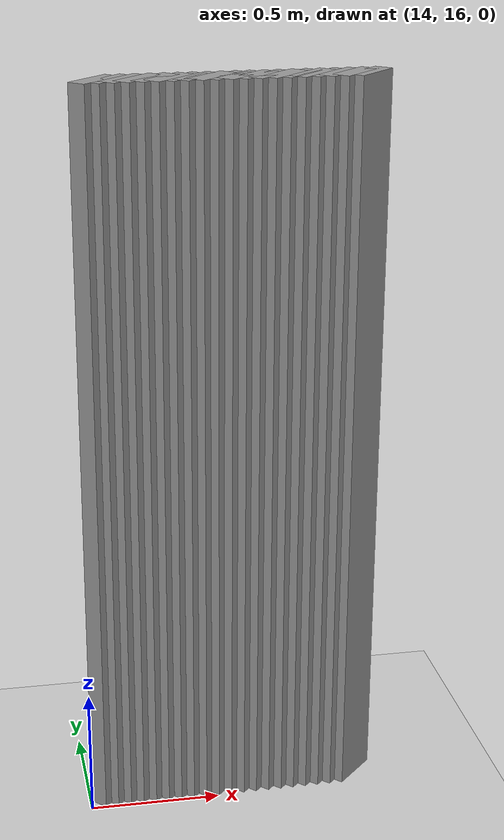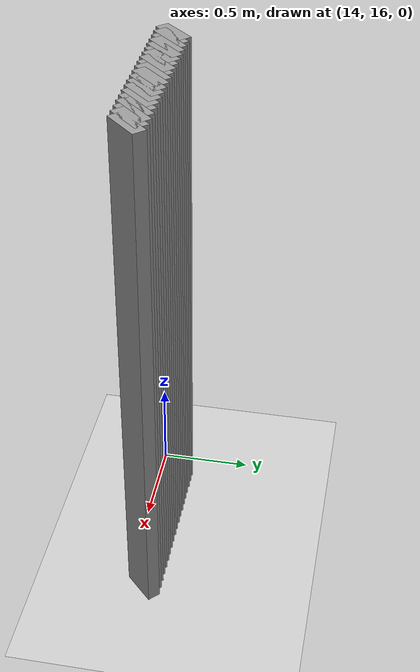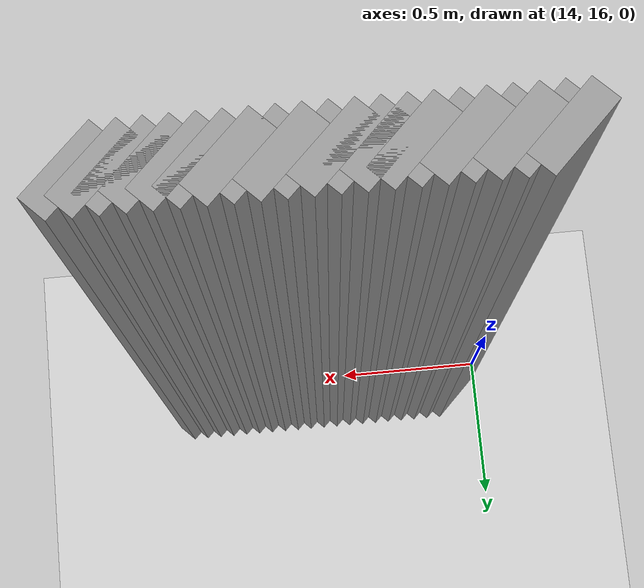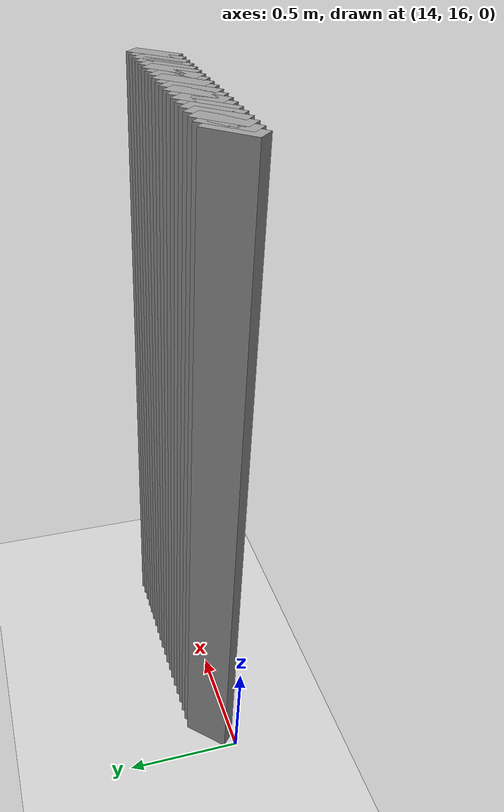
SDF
<sdf version="1.5">
 <world name="default">
  <include><uri>model://ground_plane</uri></include>
  <include><uri>model://sun</uri></include>
  <model name="grey_wall_1123">
   <static>1</static>
   <link name="link">
    <pose>14.1 16.1  1.4 0 0 -0.785398163397</pose>
    <collision name="collision"><geometry><box><size>0.0707106781187 .2  2.8</size></box></geometry></collision>
    <visual name="visual">
     <cast_shadows>0</cast_shadows>
     <geometry><box><size>0.0707106781187 .2  2.8</size></box></geometry>
     <material>
      <script>
       <uri>model://grey_wall/materials/scripts</uri>
       <uri>model://grey_wall/materials/textures</uri>
       <name>vrc/grey_wall</name>
      </script>
     </material>
    </visual>
   </link>
  </model>
  <model name="grey_wall_1124">
   <static>1</static>
   <link name="link">
    <pose>14.15 16.1  1.4 0 0 -0.785398163397</pose>
    <collision name="collision"><geometry><box><size>0.0707106781187 .2  2.8</size></box></geometry></collision>
    <visual name="visual">
     <cast_shadows>0</cast_shadows>
     <geometry><box><size>0.0707106781187 .2  2.8</size></box></geometry>
     <material>
      <script>
       <uri>model://grey_wall/materials/scripts</uri>
       <uri>model://grey_wall/materials/textures</uri>
       <name>vrc/grey_wall</name>
      </script>
     </material>
    </visual>
   </link>
  </model>
  <model name="grey_wall_1125">
   <static>1</static>
   <link name="link">
    <pose>14.2 16.1  1.4 0 0 -0.785398163397</pose>
    <collision name="collision"><geometry><box><size>0.0707106781187 .2  2.8</size></box></geometry></collision>
    <visual name="visual">
     <cast_shadows>0</cast_shadows>
     <geometry><box><size>0.0707106781187 .2  2.8</size></box></geometry>
     <material>
      <script>
       <uri>model://grey_wall/materials/scripts</uri>
       <uri>model://grey_wall/materials/textures</uri>
       <name>vrc/grey_wall</name>
      </script>
     </material>
    </visual>
   </link>
  </model>
  <model name="grey_wall_1126">
   <static>1</static>
   <link name="link">
    <pose>14.25 16.1  1.4 0 0 -0.785398163397</pose>
    <collision name="collision"><geometry><box><size>0.0707106781187 .2  2.8</size></box></geometry></collision>
    <visual name="visual">
     <cast_shadows>0</cast_shadows>
     <geometry><box><size>0.0707106781187 .2  2.8</size></box></geometry>
     <material>
      <script>
       <uri>model://grey_wall/materials/scripts</uri>
       <uri>model://grey_wall/materials/textures</uri>
       <name>vrc/grey_wall</name>
      </script>
     </material>
    </visual>
   </link>
  </model>
  <model name="grey_wall_1127">
   <static>1</static>
   <link name="link">
    <pose>14.3 16.1  1.4 0 0 -0.785398163397</pose>
    <collision name="collision"><geometry><box><size>0.0707106781187 .2  2.8</size></box></geometry></collision>
    <visual name="visual">
     <cast_shadows>0</cast_shadows>
     <geometry><box><size>0.0707106781187 .2  2.8</size></box></geometry>
     <material>
      <script>
       <uri>model://grey_wall/materials/scripts</uri>
       <uri>model://grey_wall/materials/textures</uri>
       <name>vrc/grey_wall</name>
      </script>
     </material>
    </visual>
   </link>
  </model>
  <model name="grey_wall_1128">
   <static>1</static>
   <link name="link">
    <pose>14.35 16.1  1.4 0 0 -0.785398163397</pose>
    <collision name="collision"><geometry><box><size>0.0707106781187 .2  2.8</size></box></geometry></collision>
    <visual name="visual">
     <cast_shadows>0</cast_shadows>
     <geometry><box><size>0.0707106781187 .2  2.8</size></box></geometry>
     <material>
      <script>
       <uri>model://grey_wall/materials/scripts</uri>
       <uri>model://grey_wall/materials/textures</uri>
       <name>vrc/grey_wall</name>
      </script>
     </material>
    </visual>
   </link>
  </model>
  <model name="grey_wall_1129">
   <static>1</static>
   <link name="link">
    <pose>14.4 16.1  1.4 0 0 -0.785398163397</pose>
    <collision name="collision"><geometry><box><size>0.0707106781187 .2  2.8</size></box></geometry></collision>
    <visual name="visual">
     <cast_shadows>0</cast_shadows>
     <geometry><box><size>0.0707106781187 .2  2.8</size></box></geometry>
     <material>
      <script>
       <uri>model://grey_wall/materials/scripts</uri>
       <uri>model://grey_wall/materials/textures</uri>
       <name>vrc/grey_wall</name>
      </script>
     </material>
    </visual>
   </link>
  </model>
  <model name="grey_wall_1130">
   <static>1</static>
   <link name="link">
    <pose>14.45 16.1  1.4 0 0 -0.785398163397</pose>
    <collision name="collision"><geometry><box><size>0.0707106781187 .2  2.8</size></box></geometry></collision>
    <visual name="visual">
     <cast_shadows>0</cast_shadows>
     <geometry><box><size>0.0707106781187 .2  2.8</size></box></geometry>
     <material>
      <script>
       <uri>model://grey_wall/materials/scripts</uri>
       <uri>model://grey_wall/materials/textures</uri>
       <name>vrc/grey_wall</name>
      </script>
     </material>
    </visual>
   </link>
  </model>
  <model name="grey_wall_1131">
   <static>1</static>
   <link name="link">
    <pose>14.5 16.1  1.4 0 0 -0.785398163397</pose>
    <collision name="collision"><geometry><box><size>0.0707106781187 .2  2.8</size></box></geometry></collision>
    <visual name="visual">
     <cast_shadows>0</cast_shadows>
     <geometry><box><size>0.0707106781187 .2  2.8</size></box></geometry>
     <material>
      <script>
       <uri>model://grey_wall/materials/scripts</uri>
       <uri>model://grey_wall/materials/textures</uri>
       <name>vrc/grey_wall</name>
      </script>
     </material>
    </visual>
   </link>
  </model>
  <model name="grey_wall_1132">
   <static>1</static>
   <link name="link">
    <pose>14.55 16.1  1.4 0 0 -0.785398163397</pose>
    <collision name="collision"><geometry><box><size>0.0707106781187 .2  2.8</size></box></geometry></collision>
    <visual name="visual">
     <cast_shadows>0</cast_shadows>
     <geometry><box><size>0.0707106781187 .2  2.8</size></box></geometry>
     <material>
      <script>
       <uri>model://grey_wall/materials/scripts</uri>
       <uri>model://grey_wall/materials/textures</uri>
       <name>vrc/grey_wall</name>
      </script>
     </material>
    </visual>
   </link>
  </model>
  <model name="grey_wall_1133">
   <static>1</static>
   <link name="link">
    <pose>14.6 16.1  1.4 0 0 -0.785398163397</pose>
    <collision name="collision"><geometry><box><size>0.0707106781187 .2  2.8</size></box></geometry></collision>
    <visual name="visual">
     <cast_shadows>0</cast_shadows>
     <geometry><box><size>0.0707106781187 .2  2.8</size></box></geometry>
     <material>
      <script>
       <uri>model://grey_wall/materials/scripts</uri>
       <uri>model://grey_wall/materials/textures</uri>
       <name>vrc/grey_wall</name>
      </script>
     </material>
    </visual>
   </link>
  </model>
  <model name="grey_wall_1134">
   <static>1</static>
   <link name="link">
    <pose>14.65 16.1  1.4 0 0 -0.785398163397</pose>
    <collision name="collision"><geometry><box><size>0.0707106781187 .2  2.8</size></box></geometry></collision>
    <visual name="visual">
     <cast_shadows>0</cast_shadows>
     <geometry><box><size>0.0707106781187 .2  2.8</size></box></geometry>
     <material>
      <script>
       <uri>model://grey_wall/materials/scripts</uri>
       <uri>model://grey_wall/materials/textures</uri>
       <name>vrc/grey_wall</name>
      </script>
     </material>
    </visual>
   </link>
  </model>
  <model name="grey_wall_1135">
   <static>1</static>
   <link name="link">
    <pose>14.7 16.1  1.4 0 0 -0.785398163397</pose>
    <collision name="collision"><geometry><box><size>0.0707106781187 .2  2.8</size></box></geometry></collision>
    <visual name="visual">
     <cast_shadows>0</cast_shadows>
     <geometry><box><size>0.0707106781187 .2  2.8</size></box></geometry>
     <material>
      <script>
       <uri>model://grey_wall/materials/scripts</uri>
       <uri>model://grey_wall/materials/textures</uri>
       <name>vrc/grey_wall</name>
      </script>
     </material>
    </visual>
   </link>
  </model>
  <model name="grey_wall_1136">
   <static>1</static>
   <link name="link">
    <pose>14.75 16.1  1.4 0 0 -0.785398163397</pose>
    <collision name="collision"><geometry><box><size>0.0707106781187 .2  2.8</size></box></geometry></collision>
    <visual name="visual">
     <cast_shadows>0</cast_shadows>
     <geometry><box><size>0.0707106781187 .2  2.8</size></box></geometry>
     <material>
      <script>
       <uri>model://grey_wall/materials/scripts</uri>
       <uri>model://grey_wall/materials/textures</uri>
       <name>vrc/grey_wall</name>
      </script>
     </material>
    </visual>
   </link>
  </model>
  <model name="grey_wall_1137">
   <static>1</static>
   <link name="link">
    <pose>14.8 16.1  1.4 0 0 -0.785398163397</pose>
    <collision name="collision"><geometry><box><size>0.0707106781187 .2  2.8</size></box></geometry></collision>
    <visual name="visual">
     <cast_shadows>0</cast_shadows>
     <geometry><box><size>0.0707106781187 .2  2.8</size></box></geometry>
     <material>
      <script>
       <uri>model://grey_wall/materials/scripts</uri>
       <uri>model://grey_wall/materials/textures</uri>
       <name>vrc/grey_wall</name>
      </script>
     </material>
    </visual>
   </link>
  </model>
  <model name="grey_wall_1138">
   <static>1</static>
   <link name="link">
    <pose>14.85 16.1  1.4 0 0 -0.785398163397</pose>
    <collision name="collision"><geometry><box><size>0.0707106781187 .2  2.8</size></box></geometry></collision>
    <visual name="visual">
     <cast_shadows>0</cast_shadows>
     <geometry><box><size>0.0707106781187 .2  2.8</size></box></geometry>
     <material>
      <script>
       <uri>model://grey_wall/materials/scripts</uri>
       <uri>model://grey_wall/materials/textures</uri>
       <name>vrc/grey_wall</name>
      </script>
     </material>
    </visual>
   </link>
  </model>
  <model name="grey_wall_1139">
   <static>1</static>
   <link name="link">
    <pose>14.9 16.1  1.4 0 0 -0.785398163397</pose>
    <collision name="collision"><geometry><box><size>0.0707106781187 .2  2.8</size></box></geometry></collision>
    <visual name="visual">
     <cast_shadows>0</cast_shadows>
     <geometry><box><size>0.0707106781187 .2  2.8</size></box></geometry>
     <material>
      <script>
       <uri>model://grey_wall/materials/scripts</uri>
       <uri>model://grey_wall/materials/textures</uri>
       <name>vrc/grey_wall</name>
      </script>
     </material>
    </visual>
   </link>
  </model>
  <model name="grey_wall_1140">
   <static>1</static>
   <link name="link">
    <pose>14.95 16.1  1.4 0 0 -0.785398163397</pose>
    <collision name="collision"><geometry><box><size>0.0707106781187 .2  2.8</size></box></geometry></collision>
    <visual name="visual">
     <cast_shadows>0</cast_shadows>
     <geometry><box><size>0.0707106781187 .2  2.8</size></box></geometry>
     <material>
      <script>
       <uri>model://grey_wall/materials/scripts</uri>
       <uri>model://grey_wall/materials/textures</uri>
       <name>vrc/grey_wall</name>
      </script>
     </material>
    </visual>
   </link>
  </model>
  <model name="grey_wall_1141">
   <static>1</static>
   <link name="link">
    <pose>15.0 16.1  1.4 0 0 -0.785398163397</pose>
    <collision name="collision"><geometry><box><size>0.0707106781187 .2  2.8</size></box></geometry></collision>
    <visual name="visual">
     <cast_shadows>0</cast_shadows>
     <geometry><box><size>0.0707106781187 .2  2.8</size></box></geometry>
     <material>
      <script>
       <uri>model://grey_wall/materials/scripts</uri>
       <uri>model://grey_wall/materials/textures</uri>
       <name>vrc/grey_wall</name>
      </script>
     </material>
    </visual>
   </link>
  </model>
  <model name="grey_wall_1142">
   <static>1</static>
   <link name="link">
    <pose>15.05 16.1  1.4 0 0 -0.785398163397</pose>
    <collision name="collision"><geometry><box><size>0.0707106781187 .2  2.8</size></box></geometry></collision>
    <visual name="visual">
     <cast_shadows>0</cast_shadows>
     <geometry><box><size>0.0707106781187 .2  2.8</size></box></geometry>
     <material>
      <script>
       <uri>model://grey_wall/materials/scripts</uri>
       <uri>model://grey_wall/materials/textures</uri>
       <name>vrc/grey_wall</name>
      </script>
     </material>
    </visual>
   </link>
  </model>
 </world>
</sdf>
